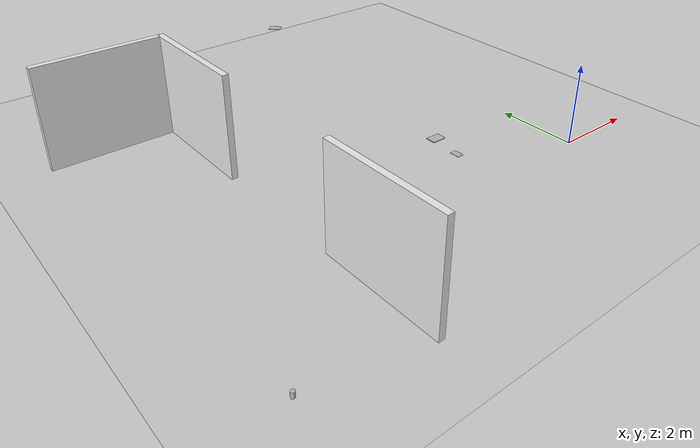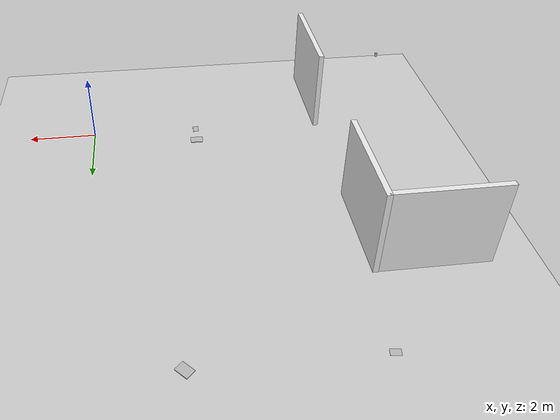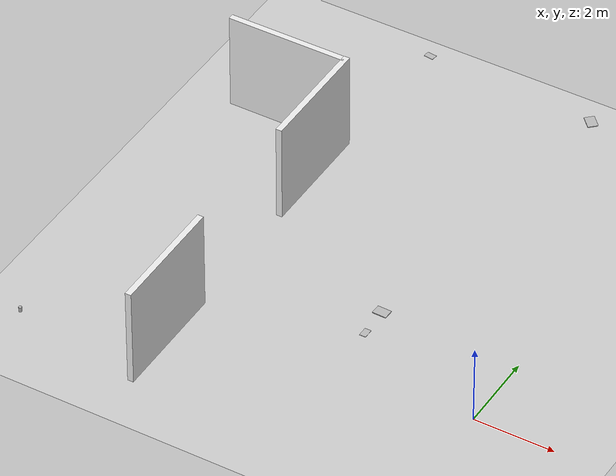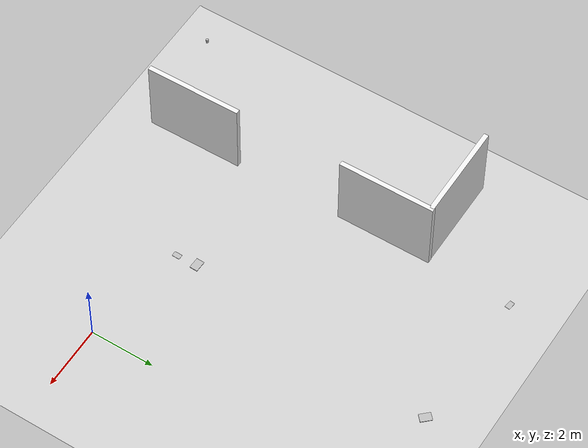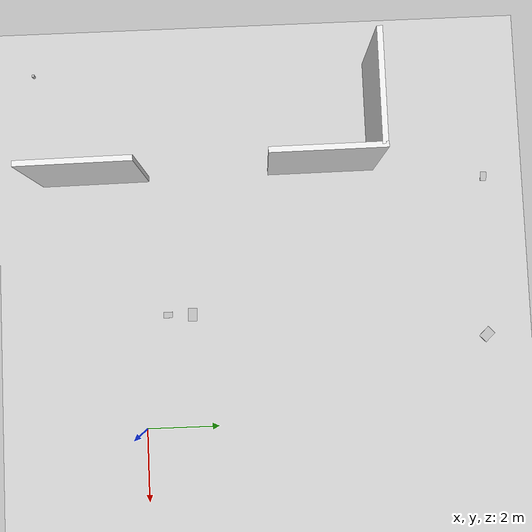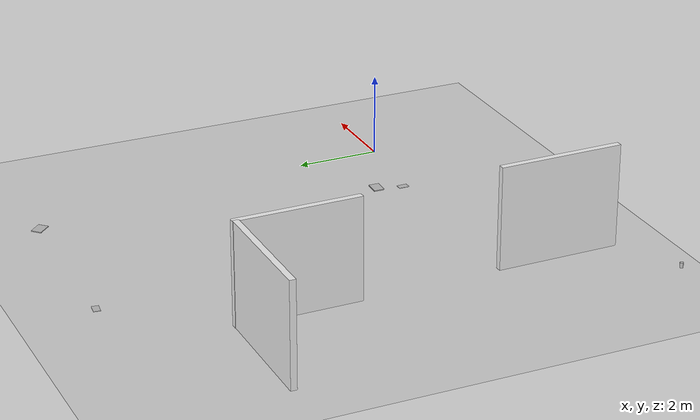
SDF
<sdf version="1.7">
 <world name="default">
  <model name="ground_plane">
   <static>1</static>
   <link name="link">
    <collision name="collision">
     <geometry><plane><normal>0 0 1</normal><size>100 100</size></plane></geometry>
     <surface><friction><ode><mu>1</mu><mu2>1</mu2></ode></friction></surface>
    </collision>
    <visual name="visual">
     <cast_shadows>0</cast_shadows>
     <geometry><plane><normal>0 0 1</normal><size>100 100</size></plane></geometry>
     <material>
      <script><uri>file://media/materials/scripts/gazebo.material</uri><name>Gazebo/Grey</name></script>
     </material>
    </visual>
    <velocity_decay><linear>0</linear><angular>0</angular></velocity_decay>
   </link>
  </model>
  <model name="coffee_box">
   <link name="link_0">
    <visual name="visual">
     <pose>0 0 0.06 0 -0 0</pose>
     <geometry><cylinder><radius>0.04</radius><length>0.12</length></cylinder></geometry>
     <material>
      <script>
       <uri>model://coffee_box/materials/scripts</uri>
       <uri>model://coffee_box/materials/textures</uri>
       <name>coffee_pat</name>
      </script>
     </material>
    </visual>
    <collision name="collision">
     <geometry><cylinder><radius>0.04</radius><length>0.12</length></cylinder></geometry>
    </collision>
   </link>
   <static>1</static>
   <pose>-9.82824 -2.71255 0.707355 0 -0 2.27574</pose>
  </model>
  <model name="book_9_0">
   <link name="cover">
    <pose>0 -0.000108 0.005 0 -0 0</pose>
    <visual name="visual">
     <geometry><box><size>0.245 0.16 0.01</size></box></geometry>
     <material>
      <script>
       <uri>model://book_9/materials/scripts</uri>
       <uri>model://book_9/materials/textures</uri>
       <name>book_9</name>
      </script>
     </material>
    </visual>
    <collision name="collision"><geometry><box><size>0.245 0.16 0.01</size></box></geometry></collision>
   </link>
   <link name="page">
    <pose>0 0.000608 0.005 0 -0 0</pose>
    <visual name="visual">
     <geometry><box><size>0.24502 0.15862 0.008</size></box></geometry>
     <material>
      <lighting>1</lighting>
      <ambient>1 1 1 1</ambient>
      <diffuse>1 1 1 1</diffuse>
      <specular>0.01 0.01 0.01 1</specular>
      <emissive>0 0 0 1</emissive>
      <shader type="vertex"><normal_map>__default__</normal_map></shader>
     </material>
    </visual>
    <collision name="collision"><geometry><box><size>0.245 0.16 0.008</size></box></geometry></collision>
   </link>
   <static>1</static>
   <pose>-3.1266 0.731411 0.499788 0 -0 1.5743</pose>
  </model>
  <model name="newspaper_1_0">
   <link name="link_0">
    <visual name="visual">
     <geometry><box><size>0.35 0.25 0.02</size></box></geometry>
     <material>
      <script>
       <uri>model://newspaper_1/materials/scripts</uri>
       <uri>model://newspaper_1/materials/textures</uri>
       <name>newspaper_1</name>
      </script>
     </material>
    </visual>
    <collision name="collision"><geometry><box><size>0.35 0.25 0.02</size></box></geometry></collision>
   </link>
   <static>1</static>
   <pose>-2.24932 9.33811 0.733586 0 0 -0.805858</pose>
  </model>
  <model name="book_7">
   <link name="cover">
    <pose>0 -0.000108 0.005 0 -0 0</pose>
    <visual name="visual">
     <geometry><box><size>0.245 0.16 0.01</size></box></geometry>
     <material>
      <script>
       <uri>model://book_7/materials/scripts</uri>
       <uri>model://book_7/materials/textures</uri>
       <name>book_7</name>
      </script>
     </material>
    </visual>
    <collision name="collision"><geometry><box><size>0.245 0.16 0.01</size></box></geometry></collision>
   </link>
   <link name="page">
    <pose>0 0.000608 0.005 0 -0 0</pose>
    <visual name="visual">
     <geometry><box><size>0.24502 0.15862 0.008</size></box></geometry>
     <material>
      <lighting>1</lighting>
      <ambient>1 1 1 1</ambient>
      <diffuse>1 1 1 1</diffuse>
      <specular>0.01 0.01 0.01 1</specular>
      <emissive>0 0 0 1</emissive>
      <shader type="vertex"><normal_map>__default__</normal_map></shader>
     </material>
    </visual>
    <collision name="collision"><geometry><box><size>0.245 0.16 0.008</size></box></geometry></collision>
   </link>
   <static>1</static>
   <pose>-6.53983 9.47094 0.790989 0 0 -0.119957</pose>
  </model>
  <model name="newspaper_3_0">
   <link name="link_0">
    <visual name="visual">
     <geometry><box><size>0.35 0.25 0.02</size></box></geometry>
     <material>
      <script>
       <uri>model://newspaper_3/materials/scripts</uri>
       <uri>model://newspaper_3/materials/textures</uri>
       <name>newspaper_3</name>
      </script>
     </material>
    </visual>
    <collision name="collision"><geometry><box><size>0.35 0.25 0.02</size></box></geometry></collision>
   </link>
   <static>1</static>
   <pose>-3.10975 1.41362 0.596959 0 -0 3.1144</pose>
  </model>
  <model name="office_env_w_single_9">
   <link name="wall">
    <visual name="wall_visual">
     <geometry><box><size>3 0.15 2.5</size></box></geometry>
     <pose>0 0 1.25 0 -0 0</pose>
     <material>
      <script>
       <uri>model://office_env_single/materials/scripts</uri>
       <uri>model://office_env_single/materials/textures</uri>
       <name>wall_white</name>
      </script>
     </material>
    </visual>
    <pose>0 0 0 0 -0 3.14159</pose>
   </link>
   <static>1</static>
   <pose>-8.60494 6.53694 0 0 -0 0</pose>
   <collide>0</collide>
  </model>
  <model name="office_env_w_single_13">
   <link name="main">
    <visual name="wall_visual">
     <geometry><box><size>3 0.15 2.5</size></box></geometry>
     <pose>0 0 1.25 0 -0 0</pose>
     <material>
      <script>
       <uri>model://office_env_single/materials/scripts</uri>
       <uri>model://office_env_single/materials/textures</uri>
       <name>wall_white</name>
      </script>
     </material>
    </visual>
   </link>
   <static>1</static>
   <pose>-7.08092 5.12295 0 0 0 -1.56446</pose>
   <collide>0</collide>
  </model>
  <model name="office_env_w_single_15">
   <link name="main">
    <visual name="wall_visual">
     <geometry><box><size>3 0.15 2.5</size></box></geometry>
     <pose>0 0 1.25 0 -0 0</pose>
     <material>
      <script>
       <uri>model://office_env_single/materials/scripts</uri>
       <uri>model://office_env_single/materials/textures</uri>
       <name>wall_white</name>
      </script>
     </material>
    </visual>
   </link>
   <static>1</static>
   <pose>-6.99942 -1.24691 0 0 0 -1.5605</pose>
   <collide>0</collide>
  </model>
 </world>
</sdf>
